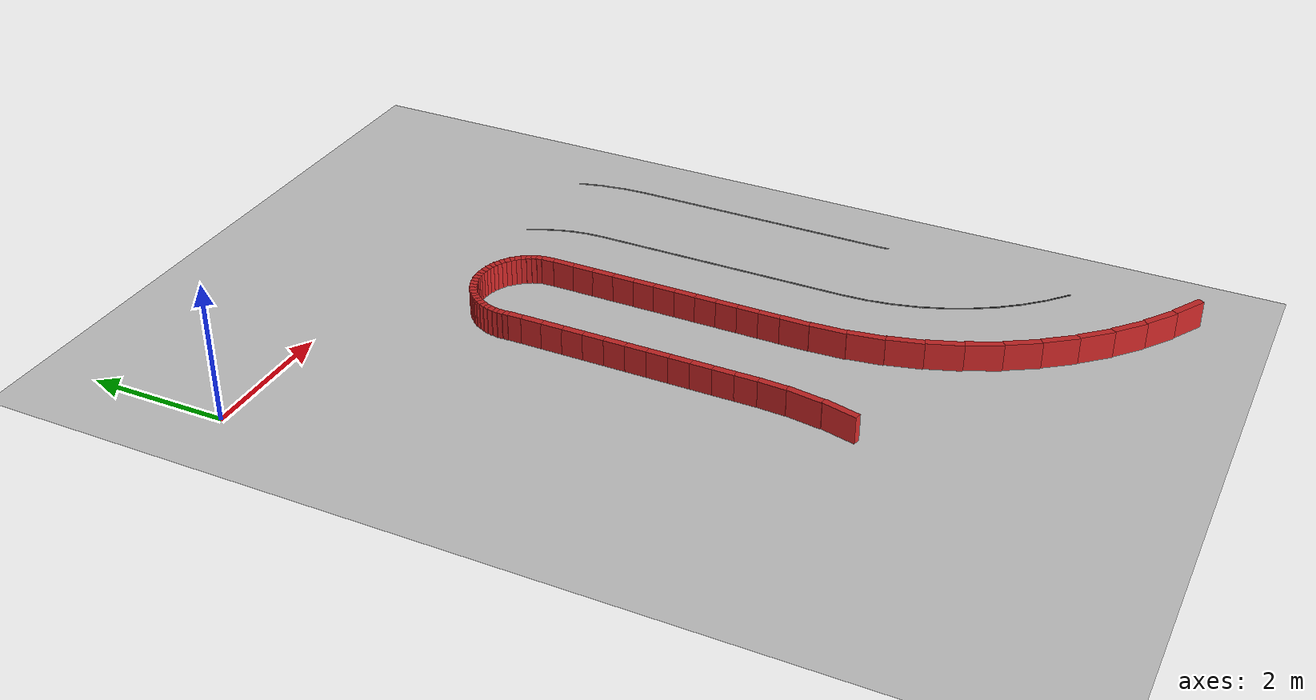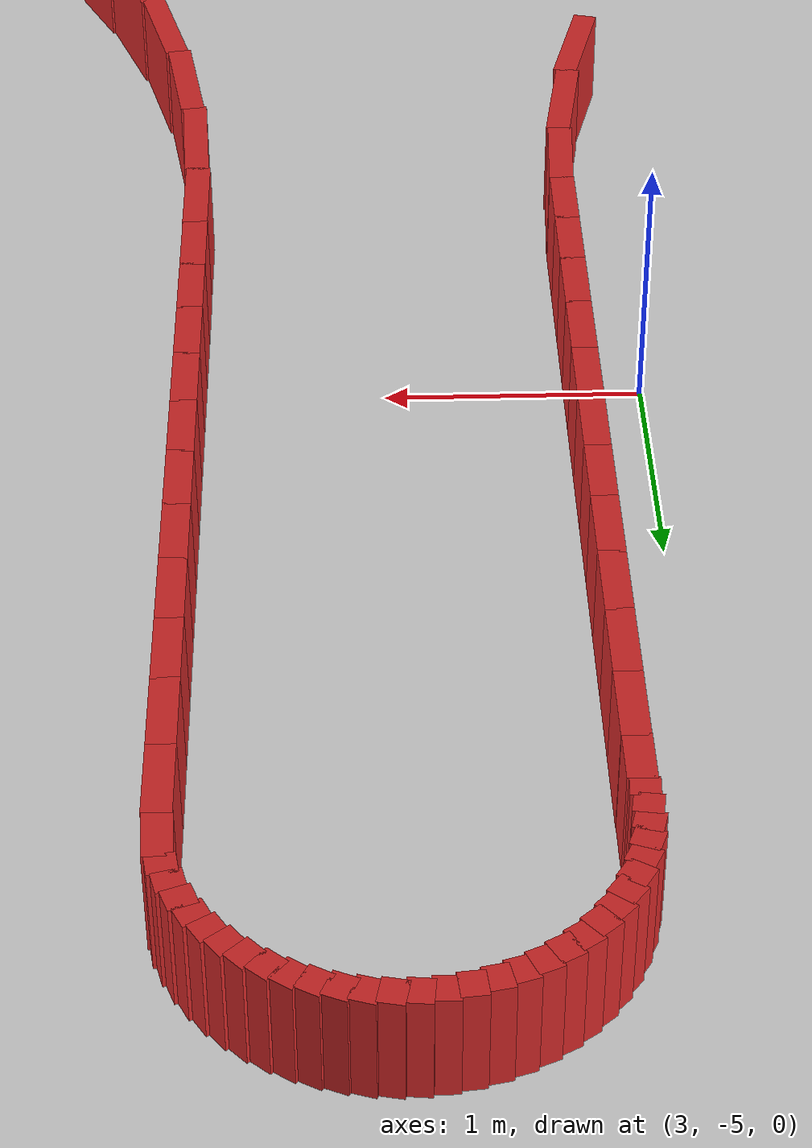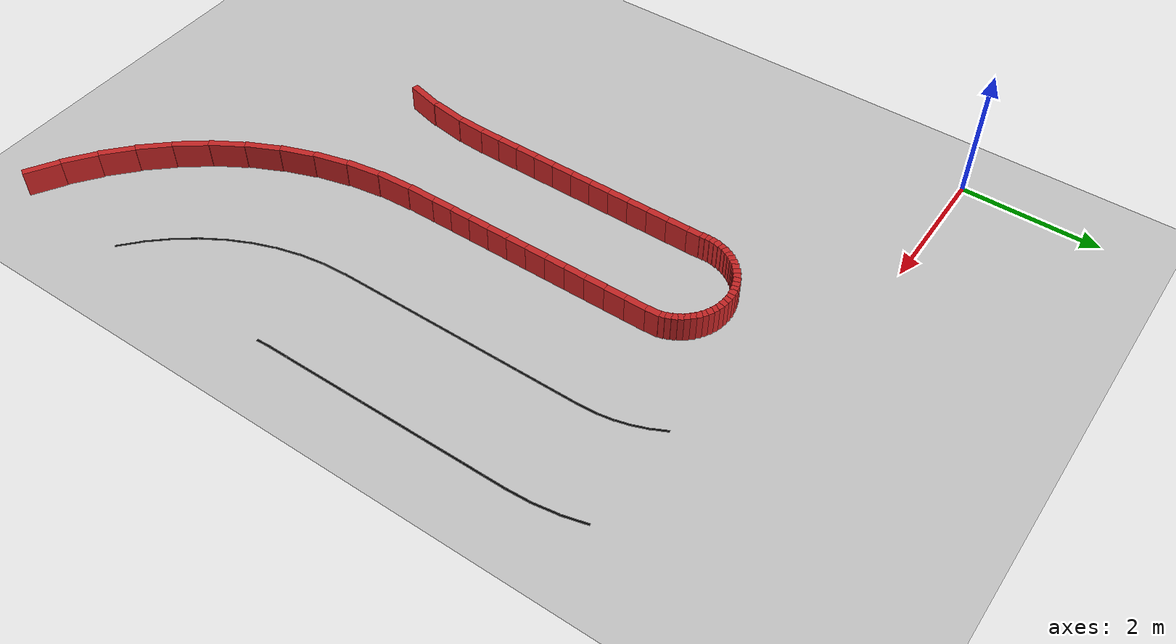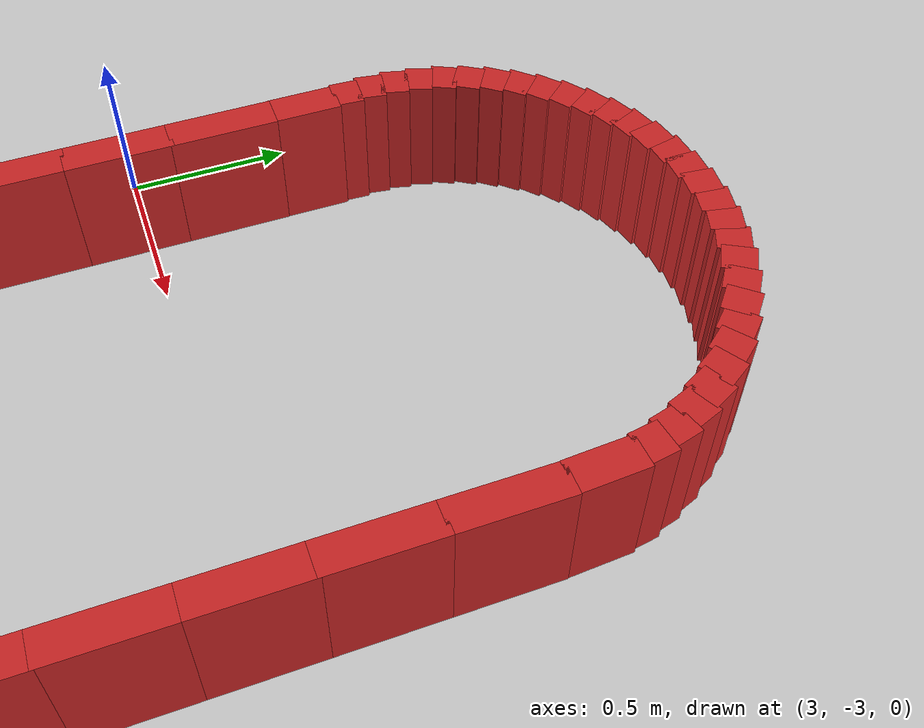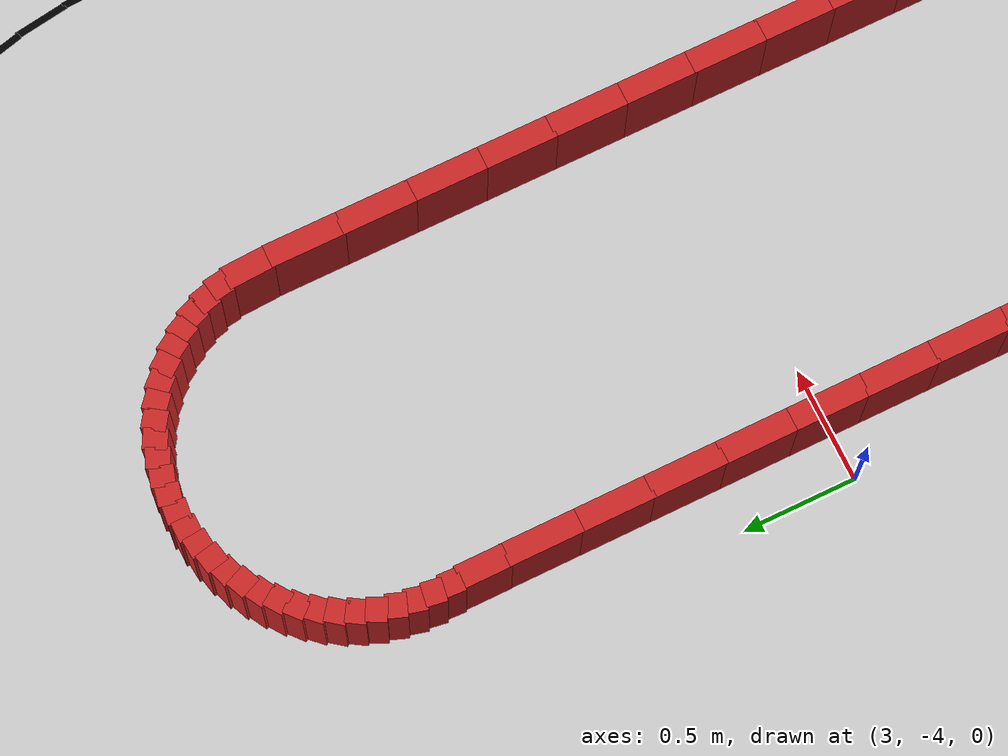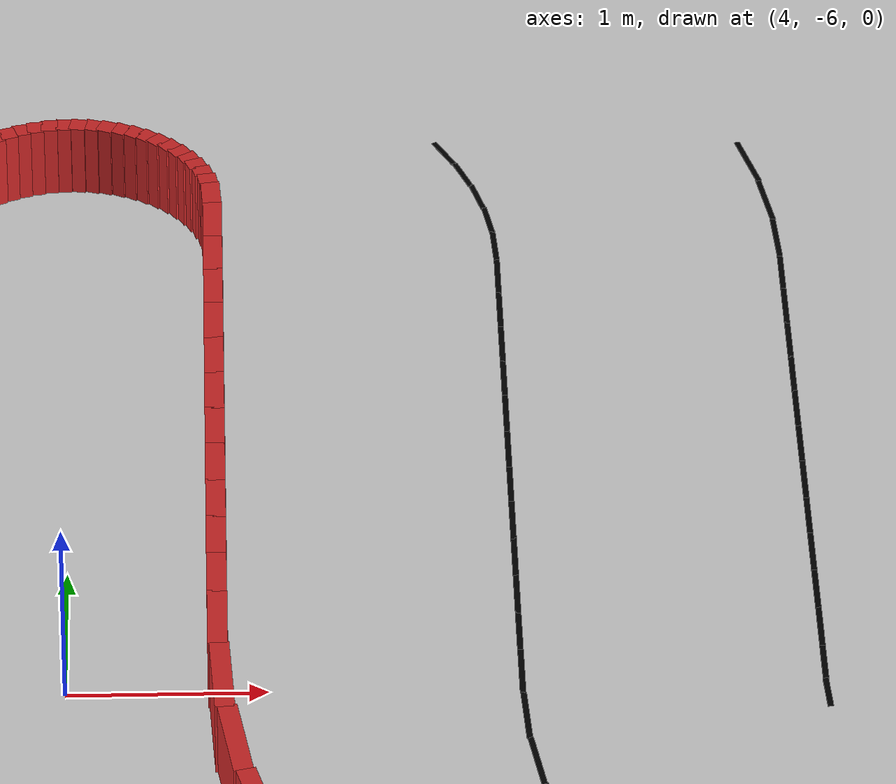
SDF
<sdf version="1.6">
 <world name="3lane_track">
  <include><uri>model://ground_plane</uri></include>
  <include><uri>model://sun</uri></include>
  <model name="ow_59">
   <static>true</static>
   <pose>3.1107 -7.1665 0.200 0 0 1.3254</pose>
   <link name="l">
    <collision name="c"><geometry><box><size>0.5251 0.1 0.4</size></box></geometry></collision>
    <visual name="v">
     <geometry><box><size>0.5251 0.1 0.4</size></box></geometry>
     <material><ambient>0.8 0.15 0.15 1</ambient><diffuse>0.8 0.15 0.15 1</diffuse></material>
    </visual>
   </link>
  </model>
  <model name="ow_60">
   <static>true</static>
   <pose>3.2004 -6.6599 0.200 0 0 1.4235</pose>
   <link name="l">
    <collision name="c"><geometry><box><size>0.5251 0.1 0.4</size></box></geometry></collision>
    <visual name="v">
     <geometry><box><size>0.5251 0.1 0.4</size></box></geometry>
     <material><ambient>0.8 0.15 0.15 1</ambient><diffuse>0.8 0.15 0.15 1</diffuse></material>
    </visual>
   </link>
  </model>
  <model name="ow_61">
   <static>true</static>
   <pose>3.2414 -6.2022 0.200 0 0 1.5217</pose>
   <link name="l">
    <collision name="c"><geometry><box><size>0.4148 0.1 0.4</size></box></geometry></collision>
    <visual name="v">
     <geometry><box><size>0.4148 0.1 0.4</size></box></geometry>
     <material><ambient>0.8 0.15 0.15 1</ambient><diffuse>0.8 0.15 0.15 1</diffuse></material>
    </visual>
   </link>
  </model>
  <model name="ow_62">
   <static>true</static>
   <pose>3.2500 -5.8437 0.200 0 0 1.5708</pose>
   <link name="l">
    <collision name="c"><geometry><box><size>0.3225 0.1 0.4</size></box></geometry></collision>
    <visual name="v">
     <geometry><box><size>0.3225 0.1 0.4</size></box></geometry>
     <material><ambient>0.8 0.15 0.15 1</ambient><diffuse>0.8 0.15 0.15 1</diffuse></material>
    </visual>
   </link>
  </model>
  <model name="ow_63">
   <static>true</static>
   <pose>3.2500 -5.5312 0.200 0 0 1.5708</pose>
   <link name="l">
    <collision name="c"><geometry><box><size>0.3225 0.1 0.4</size></box></geometry></collision>
    <visual name="v">
     <geometry><box><size>0.3225 0.1 0.4</size></box></geometry>
     <material><ambient>0.8 0.15 0.15 1</ambient><diffuse>0.8 0.15 0.15 1</diffuse></material>
    </visual>
   </link>
  </model>
  <model name="ow_64">
   <static>true</static>
   <pose>3.2500 -5.2187 0.200 0 0 1.5708</pose>
   <link name="l">
    <collision name="c"><geometry><box><size>0.3225 0.1 0.4</size></box></geometry></collision>
    <visual name="v">
     <geometry><box><size>0.3225 0.1 0.4</size></box></geometry>
     <material><ambient>0.8 0.15 0.15 1</ambient><diffuse>0.8 0.15 0.15 1</diffuse></material>
    </visual>
   </link>
  </model>
  <model name="ow_65">
   <static>true</static>
   <pose>3.2500 -4.9062 0.200 0 0 1.5708</pose>
   <link name="l">
    <collision name="c"><geometry><box><size>0.3225 0.1 0.4</size></box></geometry></collision>
    <visual name="v">
     <geometry><box><size>0.3225 0.1 0.4</size></box></geometry>
     <material><ambient>0.8 0.15 0.15 1</ambient><diffuse>0.8 0.15 0.15 1</diffuse></material>
    </visual>
   </link>
  </model>
  <model name="ow_66">
   <static>true</static>
   <pose>3.2500 -4.5937 0.200 0 0 1.5708</pose>
   <link name="l">
    <collision name="c"><geometry><box><size>0.3225 0.1 0.4</size></box></geometry></collision>
    <visual name="v">
     <geometry><box><size>0.3225 0.1 0.4</size></box></geometry>
     <material><ambient>0.8 0.15 0.15 1</ambient><diffuse>0.8 0.15 0.15 1</diffuse></material>
    </visual>
   </link>
  </model>
  <model name="ow_67">
   <static>true</static>
   <pose>3.2500 -4.2812 0.200 0 0 1.5708</pose>
   <link name="l">
    <collision name="c"><geometry><box><size>0.3225 0.1 0.4</size></box></geometry></collision>
    <visual name="v">
     <geometry><box><size>0.3225 0.1 0.4</size></box></geometry>
     <material><ambient>0.8 0.15 0.15 1</ambient><diffuse>0.8 0.15 0.15 1</diffuse></material>
    </visual>
   </link>
  </model>
  <model name="ow_68">
   <static>true</static>
   <pose>3.2500 -3.9687 0.200 0 0 1.5708</pose>
   <link name="l">
    <collision name="c"><geometry><box><size>0.3225 0.1 0.4</size></box></geometry></collision>
    <visual name="v">
     <geometry><box><size>0.3225 0.1 0.4</size></box></geometry>
     <material><ambient>0.8 0.15 0.15 1</ambient><diffuse>0.8 0.15 0.15 1</diffuse></material>
    </visual>
   </link>
  </model>
  <model name="ow_69">
   <static>true</static>
   <pose>3.2500 -3.6562 0.200 0 0 1.5708</pose>
   <link name="l">
    <collision name="c"><geometry><box><size>0.3225 0.1 0.4</size></box></geometry></collision>
    <visual name="v">
     <geometry><box><size>0.3225 0.1 0.4</size></box></geometry>
     <material><ambient>0.8 0.15 0.15 1</ambient><diffuse>0.8 0.15 0.15 1</diffuse></material>
    </visual>
   </link>
  </model>
  <model name="ow_70">
   <static>true</static>
   <pose>3.2500 -3.3437 0.200 0 0 1.5708</pose>
   <link name="l">
    <collision name="c"><geometry><box><size>0.3225 0.1 0.4</size></box></geometry></collision>
    <visual name="v">
     <geometry><box><size>0.3225 0.1 0.4</size></box></geometry>
     <material><ambient>0.8 0.15 0.15 1</ambient><diffuse>0.8 0.15 0.15 1</diffuse></material>
    </visual>
   </link>
  </model>
  <model name="ow_71">
   <static>true</static>
   <pose>3.2500 -3.0312 0.200 0 0 1.5708</pose>
   <link name="l">
    <collision name="c"><geometry><box><size>0.3225 0.1 0.4</size></box></geometry></collision>
    <visual name="v">
     <geometry><box><size>0.3225 0.1 0.4</size></box></geometry>
     <material><ambient>0.8 0.15 0.15 1</ambient><diffuse>0.8 0.15 0.15 1</diffuse></material>
    </visual>
   </link>
  </model>
  <model name="ow_72">
   <static>true</static>
   <pose>3.2500 -2.7187 0.200 0 0 1.5708</pose>
   <link name="l">
    <collision name="c"><geometry><box><size>0.3225 0.1 0.4</size></box></geometry></collision>
    <visual name="v">
     <geometry><box><size>0.3225 0.1 0.4</size></box></geometry>
     <material><ambient>0.8 0.15 0.15 1</ambient><diffuse>0.8 0.15 0.15 1</diffuse></material>
    </visual>
   </link>
  </model>
  <model name="ow_73">
   <static>true</static>
   <pose>3.2486 -2.4632 0.200 0 0 1.5708</pose>
   <link name="l">
    <collision name="c"><geometry><box><size>0.2086 0.1 0.4</size></box></geometry></collision>
    <visual name="v">
     <geometry><box><size>0.2086 0.1 0.4</size></box></geometry>
     <material><ambient>0.8 0.15 0.15 1</ambient><diffuse>0.8 0.15 0.15 1</diffuse></material>
    </visual>
   </link>
  </model>
  <model name="ow_74">
   <static>true</static>
   <pose>3.2433 -2.3256 0.200 0 0 1.5201</pose>
   <link name="l">
    <collision name="c"><geometry><box><size>0.0871 0.1 0.4</size></box></geometry></collision>
    <visual name="v">
     <geometry><box><size>0.0871 0.1 0.4</size></box></geometry>
     <material><ambient>0.8 0.15 0.15 1</ambient><diffuse>0.8 0.15 0.15 1</diffuse></material>
    </visual>
   </link>
  </model>
  <model name="ow_75">
   <static>true</static>
   <pose>3.2395 -2.2486 0.200 0 0 1.4188</pose>
   <link name="l">
    <collision name="c"><geometry><box><size>0.0871 0.1 0.4</size></box></geometry></collision>
    <visual name="v">
     <geometry><box><size>0.0871 0.1 0.4</size></box></geometry>
     <material><ambient>0.8 0.15 0.15 1</ambient><diffuse>0.8 0.15 0.15 1</diffuse></material>
    </visual>
   </link>
  </model>
  <model name="ow_76">
   <static>true</static>
   <pose>3.2436 -2.1717 0.200 0 0 1.3174</pose>
   <link name="l">
    <collision name="c"><geometry><box><size>0.0871 0.1 0.4</size></box></geometry></collision>
    <visual name="v">
     <geometry><box><size>0.0871 0.1 0.4</size></box></geometry>
     <material><ambient>0.8 0.15 0.15 1</ambient><diffuse>0.8 0.15 0.15 1</diffuse></material>
    </visual>
   </link>
  </model>
  <model name="ow_77">
   <static>true</static>
   <pose>3.2554 -2.0956 0.200 0 0 1.2161</pose>
   <link name="l">
    <collision name="c"><geometry><box><size>0.0871 0.1 0.4</size></box></geometry></collision>
    <visual name="v">
     <geometry><box><size>0.0871 0.1 0.4</size></box></geometry>
     <material><ambient>0.8 0.15 0.15 1</ambient><diffuse>0.8 0.15 0.15 1</diffuse></material>
    </visual>
   </link>
  </model>
  <model name="ow_78">
   <static>true</static>
   <pose>3.2748 -2.0210 0.200 0 0 1.1148</pose>
   <link name="l">
    <collision name="c"><geometry><box><size>0.0871 0.1 0.4</size></box></geometry></collision>
    <visual name="v">
     <geometry><box><size>0.0871 0.1 0.4</size></box></geometry>
     <material><ambient>0.8 0.15 0.15 1</ambient><diffuse>0.8 0.15 0.15 1</diffuse></material>
    </visual>
   </link>
  </model>
  <model name="ow_79">
   <static>true</static>
   <pose>3.3017 -1.9488 0.200 0 0 1.0134</pose>
   <link name="l">
    <collision name="c"><geometry><box><size>0.0871 0.1 0.4</size></box></geometry></collision>
    <visual name="v">
     <geometry><box><size>0.0871 0.1 0.4</size></box></geometry>
     <material><ambient>0.8 0.15 0.15 1</ambient><diffuse>0.8 0.15 0.15 1</diffuse></material>
    </visual>
   </link>
  </model>
  <model name="ow_80">
   <static>true</static>
   <pose>3.3357 -1.8797 0.200 0 0 0.9121</pose>
   <link name="l">
    <collision name="c"><geometry><box><size>0.0871 0.1 0.4</size></box></geometry></collision>
    <visual name="v">
     <geometry><box><size>0.0871 0.1 0.4</size></box></geometry>
     <material><ambient>0.8 0.15 0.15 1</ambient><diffuse>0.8 0.15 0.15 1</diffuse></material>
    </visual>
   </link>
  </model>
  <model name="ow_81">
   <static>true</static>
   <pose>3.3766 -1.8144 0.200 0 0 0.8107</pose>
   <link name="l">
    <collision name="c"><geometry><box><size>0.0871 0.1 0.4</size></box></geometry></collision>
    <visual name="v">
     <geometry><box><size>0.0871 0.1 0.4</size></box></geometry>
     <material><ambient>0.8 0.15 0.15 1</ambient><diffuse>0.8 0.15 0.15 1</diffuse></material>
    </visual>
   </link>
  </model>
  <model name="ow_82">
   <static>true</static>
   <pose>3.4239 -1.7536 0.200 0 0 0.7094</pose>
   <link name="l">
    <collision name="c"><geometry><box><size>0.0871 0.1 0.4</size></box></geometry></collision>
    <visual name="v">
     <geometry><box><size>0.0871 0.1 0.4</size></box></geometry>
     <material><ambient>0.8 0.15 0.15 1</ambient><diffuse>0.8 0.15 0.15 1</diffuse></material>
    </visual>
   </link>
  </model>
  <model name="ow_83">
   <static>true</static>
   <pose>3.4770 -1.6979 0.200 0 0 0.6081</pose>
   <link name="l">
    <collision name="c"><geometry><box><size>0.0871 0.1 0.4</size></box></geometry></collision>
    <visual name="v">
     <geometry><box><size>0.0871 0.1 0.4</size></box></geometry>
     <material><ambient>0.8 0.15 0.15 1</ambient><diffuse>0.8 0.15 0.15 1</diffuse></material>
    </visual>
   </link>
  </model>
  <model name="ow_84">
   <static>true</static>
   <pose>3.5356 -1.6478 0.200 0 0 0.5067</pose>
   <link name="l">
    <collision name="c"><geometry><box><size>0.0871 0.1 0.4</size></box></geometry></collision>
    <visual name="v">
     <geometry><box><size>0.0871 0.1 0.4</size></box></geometry>
     <material><ambient>0.8 0.15 0.15 1</ambient><diffuse>0.8 0.15 0.15 1</diffuse></material>
    </visual>
   </link>
  </model>
  <model name="ow_85">
   <static>true</static>
   <pose>3.5989 -1.6039 0.200 0 0 0.4054</pose>
   <link name="l">
    <collision name="c"><geometry><box><size>0.0871 0.1 0.4</size></box></geometry></collision>
    <visual name="v">
     <geometry><box><size>0.0871 0.1 0.4</size></box></geometry>
     <material><ambient>0.8 0.15 0.15 1</ambient><diffuse>0.8 0.15 0.15 1</diffuse></material>
    </visual>
   </link>
  </model>
  <model name="ow_86">
   <static>true</static>
   <pose>3.6663 -1.5666 0.200 0 0 0.3040</pose>
   <link name="l">
    <collision name="c"><geometry><box><size>0.0871 0.1 0.4</size></box></geometry></collision>
    <visual name="v">
     <geometry><box><size>0.0871 0.1 0.4</size></box></geometry>
     <material><ambient>0.8 0.15 0.15 1</ambient><diffuse>0.8 0.15 0.15 1</diffuse></material>
    </visual>
   </link>
  </model>
  <model name="ow_87">
   <static>true</static>
   <pose>3.7372 -1.5364 0.200 0 0 0.2027</pose>
   <link name="l">
    <collision name="c"><geometry><box><size>0.0871 0.1 0.4</size></box></geometry></collision>
    <visual name="v">
     <geometry><box><size>0.0871 0.1 0.4</size></box></geometry>
     <material><ambient>0.8 0.15 0.15 1</ambient><diffuse>0.8 0.15 0.15 1</diffuse></material>
    </visual>
   </link>
  </model>
  <model name="ow_88">
   <static>true</static>
   <pose>3.8107 -1.5135 0.200 0 0 0.1013</pose>
   <link name="l">
    <collision name="c"><geometry><box><size>0.0871 0.1 0.4</size></box></geometry></collision>
    <visual name="v">
     <geometry><box><size>0.0871 0.1 0.4</size></box></geometry>
     <material><ambient>0.8 0.15 0.15 1</ambient><diffuse>0.8 0.15 0.15 1</diffuse></material>
    </visual>
   </link>
  </model>
  <model name="ow_89">
   <static>true</static>
   <pose>3.8862 -1.4981 0.200 0 0 0.0000</pose>
   <link name="l">
    <collision name="c"><geometry><box><size>0.0871 0.1 0.4</size></box></geometry></collision>
    <visual name="v">
     <geometry><box><size>0.0871 0.1 0.4</size></box></geometry>
     <material><ambient>0.8 0.15 0.15 1</ambient><diffuse>0.8 0.15 0.15 1</diffuse></material>
    </visual>
   </link>
  </model>
  <model name="ow_90">
   <static>true</static>
   <pose>3.9628 -1.4904 0.200 0 0 -0.1013</pose>
   <link name="l">
    <collision name="c"><geometry><box><size>0.0871 0.1 0.4</size></box></geometry></collision>
    <visual name="v">
     <geometry><box><size>0.0871 0.1 0.4</size></box></geometry>
     <material><ambient>0.8 0.15 0.15 1</ambient><diffuse>0.8 0.15 0.15 1</diffuse></material>
    </visual>
   </link>
  </model>
  <model name="ow_91">
   <static>true</static>
   <pose>4.0399 -1.4906 0.200 0 0 -0.2027</pose>
   <link name="l">
    <collision name="c"><geometry><box><size>0.0871 0.1 0.4</size></box></geometry></collision>
    <visual name="v">
     <geometry><box><size>0.0871 0.1 0.4</size></box></geometry>
     <material><ambient>0.8 0.15 0.15 1</ambient><diffuse>0.8 0.15 0.15 1</diffuse></material>
    </visual>
   </link>
  </model>
  <model name="ow_92">
   <static>true</static>
   <pose>4.1165 -1.4985 0.200 0 0 -0.3040</pose>
   <link name="l">
    <collision name="c"><geometry><box><size>0.0871 0.1 0.4</size></box></geometry></collision>
    <visual name="v">
     <geometry><box><size>0.0871 0.1 0.4</size></box></geometry>
     <material><ambient>0.8 0.15 0.15 1</ambient><diffuse>0.8 0.15 0.15 1</diffuse></material>
    </visual>
   </link>
  </model>
  <model name="ow_93">
   <static>true</static>
   <pose>4.1919 -1.5141 0.200 0 0 -0.4054</pose>
   <link name="l">
    <collision name="c"><geometry><box><size>0.0871 0.1 0.4</size></box></geometry></collision>
    <visual name="v">
     <geometry><box><size>0.0871 0.1 0.4</size></box></geometry>
     <material><ambient>0.8 0.15 0.15 1</ambient><diffuse>0.8 0.15 0.15 1</diffuse></material>
    </visual>
   </link>
  </model>
  <model name="ow_94">
   <static>true</static>
   <pose>4.2654 -1.5373 0.200 0 0 -0.5067</pose>
   <link name="l">
    <collision name="c"><geometry><box><size>0.0871 0.1 0.4</size></box></geometry></collision>
    <visual name="v">
     <geometry><box><size>0.0871 0.1 0.4</size></box></geometry>
     <material><ambient>0.8 0.15 0.15 1</ambient><diffuse>0.8 0.15 0.15 1</diffuse></material>
    </visual>
   </link>
  </model>
  <model name="ow_95">
   <static>true</static>
   <pose>4.3361 -1.5678 0.200 0 0 -0.6081</pose>
   <link name="l">
    <collision name="c"><geometry><box><size>0.0871 0.1 0.4</size></box></geometry></collision>
    <visual name="v">
     <geometry><box><size>0.0871 0.1 0.4</size></box></geometry>
     <material><ambient>0.8 0.15 0.15 1</ambient><diffuse>0.8 0.15 0.15 1</diffuse></material>
    </visual>
   </link>
  </model>
  <model name="ow_96">
   <static>true</static>
   <pose>4.4034 -1.6053 0.200 0 0 -0.7094</pose>
   <link name="l">
    <collision name="c"><geometry><box><size>0.0871 0.1 0.4</size></box></geometry></collision>
    <visual name="v">
     <geometry><box><size>0.0871 0.1 0.4</size></box></geometry>
     <material><ambient>0.8 0.15 0.15 1</ambient><diffuse>0.8 0.15 0.15 1</diffuse></material>
    </visual>
   </link>
  </model>
  <model name="ow_97">
   <static>true</static>
   <pose>4.4666 -1.6495 0.200 0 0 -0.8107</pose>
   <link name="l">
    <collision name="c"><geometry><box><size>0.0871 0.1 0.4</size></box></geometry></collision>
    <visual name="v">
     <geometry><box><size>0.0871 0.1 0.4</size></box></geometry>
     <material><ambient>0.8 0.15 0.15 1</ambient><diffuse>0.8 0.15 0.15 1</diffuse></material>
    </visual>
   </link>
  </model>
  <model name="ow_98">
   <static>true</static>
   <pose>4.5249 -1.6997 0.200 0 0 -0.9121</pose>
   <link name="l">
    <collision name="c"><geometry><box><size>0.0871 0.1 0.4</size></box></geometry></collision>
    <visual name="v">
     <geometry><box><size>0.0871 0.1 0.4</size></box></geometry>
     <material><ambient>0.8 0.15 0.15 1</ambient><diffuse>0.8 0.15 0.15 1</diffuse></material>
    </visual>
   </link>
  </model>
  <model name="ow_99">
   <static>true</static>
   <pose>4.5779 -1.7557 0.200 0 0 -1.0134</pose>
   <link name="l">
    <collision name="c"><geometry><box><size>0.0871 0.1 0.4</size></box></geometry></collision>
    <visual name="v">
     <geometry><box><size>0.0871 0.1 0.4</size></box></geometry>
     <material><ambient>0.8 0.15 0.15 1</ambient><diffuse>0.8 0.15 0.15 1</diffuse></material>
    </visual>
   </link>
  </model>
  <model name="ow_100">
   <static>true</static>
   <pose>4.6250 -1.8167 0.200 0 0 -1.1148</pose>
   <link name="l">
    <collision name="c"><geometry><box><size>0.0871 0.1 0.4</size></box></geometry></collision>
    <visual name="v">
     <geometry><box><size>0.0871 0.1 0.4</size></box></geometry>
     <material><ambient>0.8 0.15 0.15 1</ambient><diffuse>0.8 0.15 0.15 1</diffuse></material>
    </visual>
   </link>
  </model>
  <model name="ow_101">
   <static>true</static>
   <pose>4.6656 -1.8821 0.200 0 0 -1.2161</pose>
   <link name="l">
    <collision name="c"><geometry><box><size>0.0871 0.1 0.4</size></box></geometry></collision>
    <visual name="v">
     <geometry><box><size>0.0871 0.1 0.4</size></box></geometry>
     <material><ambient>0.8 0.15 0.15 1</ambient><diffuse>0.8 0.15 0.15 1</diffuse></material>
    </visual>
   </link>
  </model>
  <model name="ow_102">
   <static>true</static>
   <pose>4.6994 -1.9513 0.200 0 0 -1.3174</pose>
   <link name="l">
    <collision name="c"><geometry><box><size>0.0871 0.1 0.4</size></box></geometry></collision>
    <visual name="v">
     <geometry><box><size>0.0871 0.1 0.4</size></box></geometry>
     <material><ambient>0.8 0.15 0.15 1</ambient><diffuse>0.8 0.15 0.15 1</diffuse></material>
    </visual>
   </link>
  </model>
  <model name="ow_103">
   <static>true</static>
   <pose>4.7260 -2.0236 0.200 0 0 -1.4188</pose>
   <link name="l">
    <collision name="c"><geometry><box><size>0.0871 0.1 0.4</size></box></geometry></collision>
    <visual name="v">
     <geometry><box><size>0.0871 0.1 0.4</size></box></geometry>
     <material><ambient>0.8 0.15 0.15 1</ambient><diffuse>0.8 0.15 0.15 1</diffuse></material>
    </visual>
   </link>
  </model>
  <model name="ow_104">
   <static>true</static>
   <pose>4.7437 -2.1552 0.200 0 0 -1.5201</pose>
   <link name="l">
    <collision name="c"><geometry><box><size>0.2000 0.1 0.4</size></box></geometry></collision>
    <visual name="v">
     <geometry><box><size>0.2000 0.1 0.4</size></box></geometry>
     <material><ambient>0.8 0.15 0.15 1</ambient><diffuse>0.8 0.15 0.15 1</diffuse></material>
    </visual>
   </link>
  </model>
  <model name="ow_105">
   <static>true</static>
   <pose>4.7500 -2.4062 0.200 0 0 -1.5708</pose>
   <link name="l">
    <collision name="c"><geometry><box><size>0.3225 0.1 0.4</size></box></geometry></collision>
    <visual name="v">
     <geometry><box><size>0.3225 0.1 0.4</size></box></geometry>
     <material><ambient>0.8 0.15 0.15 1</ambient><diffuse>0.8 0.15 0.15 1</diffuse></material>
    </visual>
   </link>
  </model>
  <model name="ow_106">
   <static>true</static>
   <pose>4.7500 -2.7188 0.200 0 0 -1.5708</pose>
   <link name="l">
    <collision name="c"><geometry><box><size>0.3225 0.1 0.4</size></box></geometry></collision>
    <visual name="v">
     <geometry><box><size>0.3225 0.1 0.4</size></box></geometry>
     <material><ambient>0.8 0.15 0.15 1</ambient><diffuse>0.8 0.15 0.15 1</diffuse></material>
    </visual>
   </link>
  </model>
  <model name="ow_107">
   <static>true</static>
   <pose>4.7500 -3.0312 0.200 0 0 -1.5708</pose>
   <link name="l">
    <collision name="c"><geometry><box><size>0.3225 0.1 0.4</size></box></geometry></collision>
    <visual name="v">
     <geometry><box><size>0.3225 0.1 0.4</size></box></geometry>
     <material><ambient>0.8 0.15 0.15 1</ambient><diffuse>0.8 0.15 0.15 1</diffuse></material>
    </visual>
   </link>
  </model>
  <model name="ow_108">
   <static>true</static>
   <pose>4.7500 -3.3438 0.200 0 0 -1.5708</pose>
   <link name="l">
    <collision name="c"><geometry><box><size>0.3225 0.1 0.4</size></box></geometry></collision>
    <visual name="v">
     <geometry><box><size>0.3225 0.1 0.4</size></box></geometry>
     <material><ambient>0.8 0.15 0.15 1</ambient><diffuse>0.8 0.15 0.15 1</diffuse></material>
    </visual>
   </link>
  </model>
  <model name="ow_109">
   <static>true</static>
   <pose>4.7500 -3.6562 0.200 0 0 -1.5708</pose>
   <link name="l">
    <collision name="c"><geometry><box><size>0.3225 0.1 0.4</size></box></geometry></collision>
    <visual name="v">
     <geometry><box><size>0.3225 0.1 0.4</size></box></geometry>
     <material><ambient>0.8 0.15 0.15 1</ambient><diffuse>0.8 0.15 0.15 1</diffuse></material>
    </visual>
   </link>
  </model>
  <model name="ow_110">
   <static>true</static>
   <pose>4.7500 -3.9688 0.200 0 0 -1.5708</pose>
   <link name="l">
    <collision name="c"><geometry><box><size>0.3225 0.1 0.4</size></box></geometry></collision>
    <visual name="v">
     <geometry><box><size>0.3225 0.1 0.4</size></box></geometry>
     <material><ambient>0.8 0.15 0.15 1</ambient><diffuse>0.8 0.15 0.15 1</diffuse></material>
    </visual>
   </link>
  </model>
  <model name="ow_111">
   <static>true</static>
   <pose>4.7500 -4.2812 0.200 0 0 -1.5708</pose>
   <link name="l">
    <collision name="c"><geometry><box><size>0.3225 0.1 0.4</size></box></geometry></collision>
    <visual name="v">
     <geometry><box><size>0.3225 0.1 0.4</size></box></geometry>
     <material><ambient>0.8 0.15 0.15 1</ambient><diffuse>0.8 0.15 0.15 1</diffuse></material>
    </visual>
   </link>
  </model>
  <model name="ow_112">
   <static>true</static>
   <pose>4.7500 -4.5938 0.200 0 0 -1.5708</pose>
   <link name="l">
    <collision name="c"><geometry><box><size>0.3225 0.1 0.4</size></box></geometry></collision>
    <visual name="v">
     <geometry><box><size>0.3225 0.1 0.4</size></box></geometry>
     <material><ambient>0.8 0.15 0.15 1</ambient><diffuse>0.8 0.15 0.15 1</diffuse></material>
    </visual>
   </link>
  </model>
  <model name="ow_113">
   <static>true</static>
   <pose>4.7500 -4.9062 0.200 0 0 -1.5708</pose>
   <link name="l">
    <collision name="c"><geometry><box><size>0.3225 0.1 0.4</size></box></geometry></collision>
    <visual name="v">
     <geometry><box><size>0.3225 0.1 0.4</size></box></geometry>
     <material><ambient>0.8 0.15 0.15 1</ambient><diffuse>0.8 0.15 0.15 1</diffuse></material>
    </visual>
   </link>
  </model>
  <model name="ow_114">
   <static>true</static>
   <pose>4.7500 -5.2188 0.200 0 0 -1.5708</pose>
   <link name="l">
    <collision name="c"><geometry><box><size>0.3225 0.1 0.4</size></box></geometry></collision>
    <visual name="v">
     <geometry><box><size>0.3225 0.1 0.4</size></box></geometry>
     <material><ambient>0.8 0.15 0.15 1</ambient><diffuse>0.8 0.15 0.15 1</diffuse></material>
    </visual>
   </link>
  </model>
  <model name="ow_115">
   <static>true</static>
   <pose>4.7500 -5.5312 0.200 0 0 -1.5708</pose>
   <link name="l">
    <collision name="c"><geometry><box><size>0.3225 0.1 0.4</size></box></geometry></collision>
    <visual name="v">
     <geometry><box><size>0.3225 0.1 0.4</size></box></geometry>
     <material><ambient>0.8 0.15 0.15 1</ambient><diffuse>0.8 0.15 0.15 1</diffuse></material>
    </visual>
   </link>
  </model>
  <model name="ow_116">
   <static>true</static>
   <pose>4.7514 -5.8990 0.200 0 0 -1.5708</pose>
   <link name="l">
    <collision name="c"><geometry><box><size>0.4329 0.1 0.4</size></box></geometry></collision>
    <visual name="v">
     <geometry><box><size>0.4329 0.1 0.4</size></box></geometry>
     <material><ambient>0.8 0.15 0.15 1</ambient><diffuse>0.8 0.15 0.15 1</diffuse></material>
    </visual>
   </link>
  </model>
  <model name="ow_117">
   <static>true</static>
   <pose>4.7708 -6.3673 0.200 0 0 -1.5217</pose>
   <link name="l">
    <collision name="c"><geometry><box><size>0.5251 0.1 0.4</size></box></geometry></collision>
    <visual name="v">
     <geometry><box><size>0.5251 0.1 0.4</size></box></geometry>
     <material><ambient>0.8 0.15 0.15 1</ambient><diffuse>0.8 0.15 0.15 1</diffuse></material>
    </visual>
   </link>
  </model>
  <model name="ow_118">
   <static>true</static>
   <pose>4.8319 -6.8781 0.200 0 0 -1.4235</pose>
   <link name="l">
    <collision name="c"><geometry><box><size>0.5251 0.1 0.4</size></box></geometry></collision>
    <visual name="v">
     <geometry><box><size>0.5251 0.1 0.4</size></box></geometry>
     <material><ambient>0.8 0.15 0.15 1</ambient><diffuse>0.8 0.15 0.15 1</diffuse></material>
    </visual>
   </link>
  </model>
  <model name="ow_119">
   <static>true</static>
   <pose>4.9429 -7.3804 0.200 0 0 -1.3254</pose>
   <link name="l">
    <collision name="c"><geometry><box><size>0.5251 0.1 0.4</size></box></geometry></collision>
    <visual name="v">
     <geometry><box><size>0.5251 0.1 0.4</size></box></geometry>
     <material><ambient>0.8 0.15 0.15 1</ambient><diffuse>0.8 0.15 0.15 1</diffuse></material>
    </visual>
   </link>
  </model>
  <model name="ow_120">
   <static>true</static>
   <pose>5.1025 -7.8695 0.200 0 0 -1.2272</pose>
   <link name="l">
    <collision name="c"><geometry><box><size>0.5251 0.1 0.4</size></box></geometry></collision>
    <visual name="v">
     <geometry><box><size>0.5251 0.1 0.4</size></box></geometry>
     <material><ambient>0.8 0.15 0.15 1</ambient><diffuse>0.8 0.15 0.15 1</diffuse></material>
    </visual>
   </link>
  </model>
  <model name="ow_121">
   <static>true</static>
   <pose>5.3094 -8.3405 0.200 0 0 -1.1290</pose>
   <link name="l">
    <collision name="c"><geometry><box><size>0.5251 0.1 0.4</size></box></geometry></collision>
    <visual name="v">
     <geometry><box><size>0.5251 0.1 0.4</size></box></geometry>
     <material><ambient>0.8 0.15 0.15 1</ambient><diffuse>0.8 0.15 0.15 1</diffuse></material>
    </visual>
   </link>
  </model>
  <model name="ow_122">
   <static>true</static>
   <pose>5.5614 -8.7890 0.200 0 0 -1.0308</pose>
   <link name="l">
    <collision name="c"><geometry><box><size>0.5251 0.1 0.4</size></box></geometry></collision>
    <visual name="v">
     <geometry><box><size>0.5251 0.1 0.4</size></box></geometry>
     <material><ambient>0.8 0.15 0.15 1</ambient><diffuse>0.8 0.15 0.15 1</diffuse></material>
    </visual>
   </link>
  </model>
  <model name="ow_123">
   <static>true</static>
   <pose>5.8561 -9.2106 0.200 0 0 -0.9327</pose>
   <link name="l">
    <collision name="c"><geometry><box><size>0.5251 0.1 0.4</size></box></geometry></collision>
    <visual name="v">
     <geometry><box><size>0.5251 0.1 0.4</size></box></geometry>
     <material><ambient>0.8 0.15 0.15 1</ambient><diffuse>0.8 0.15 0.15 1</diffuse></material>
    </visual>
   </link>
  </model>
  <model name="ow_124">
   <static>true</static>
   <pose>6.1908 -9.6013 0.200 0 0 -0.8345</pose>
   <link name="l">
    <collision name="c"><geometry><box><size>0.5251 0.1 0.4</size></box></geometry></collision>
    <visual name="v">
     <geometry><box><size>0.5251 0.1 0.4</size></box></geometry>
     <material><ambient>0.8 0.15 0.15 1</ambient><diffuse>0.8 0.15 0.15 1</diffuse></material>
    </visual>
   </link>
  </model>
  <model name="ow_125">
   <static>true</static>
   <pose>6.5621 -9.9574 0.200 0 0 -0.7363</pose>
   <link name="l">
    <collision name="c"><geometry><box><size>0.5251 0.1 0.4</size></box></geometry></collision>
    <visual name="v">
     <geometry><box><size>0.5251 0.1 0.4</size></box></geometry>
     <material><ambient>0.8 0.15 0.15 1</ambient><diffuse>0.8 0.15 0.15 1</diffuse></material>
    </visual>
   </link>
  </model>
  <model name="ow_126">
   <static>true</static>
   <pose>6.9665 -10.2753 0.200 0 0 -0.6381</pose>
   <link name="l">
    <collision name="c"><geometry><box><size>0.5251 0.1 0.4</size></box></geometry></collision>
    <visual name="v">
     <geometry><box><size>0.5251 0.1 0.4</size></box></geometry>
     <material><ambient>0.8 0.15 0.15 1</ambient><diffuse>0.8 0.15 0.15 1</diffuse></material>
    </visual>
   </link>
  </model>
  <model name="ow_127">
   <static>true</static>
   <pose>7.4002 -10.5520 0.200 0 0 -0.5400</pose>
   <link name="l">
    <collision name="c"><geometry><box><size>0.5251 0.1 0.4</size></box></geometry></collision>
    <visual name="v">
     <geometry><box><size>0.5251 0.1 0.4</size></box></geometry>
     <material><ambient>0.8 0.15 0.15 1</ambient><diffuse>0.8 0.15 0.15 1</diffuse></material>
    </visual>
   </link>
  </model>
  <model name="line_201">
   <static>true</static>
   <pose>6.0016 -1.2259 0.002 0 0 -1.1148</pose>
   <link name="l">
    <visual name="v">
     <geometry><box><size>0.2381 0.03 0.002</size></box></geometry>
     <material><ambient>0 0 0 1</ambient><diffuse>0 0 0 1</diffuse></material>
    </visual>
   </link>
  </model>
  <model name="line_203">
   <static>true</static>
   <pose>6.0950 -1.4337 0.002 0 0 -1.2161</pose>
   <link name="l">
    <visual name="v">
     <geometry><box><size>0.2381 0.03 0.002</size></box></geometry>
     <material><ambient>0 0 0 1</ambient><diffuse>0 0 0 1</diffuse></material>
    </visual>
   </link>
  </model>
  <model name="line_204">
   <static>true</static>
   <pose>7.6342 -1.3482 0.002 0 0 -1.3174</pose>
   <link name="l">
    <visual name="v">
     <geometry><box><size>0.3898 0.03 0.002</size></box></geometry>
     <material><ambient>0 0 0 1</ambient><diffuse>0 0 0 1</diffuse></material>
    </visual>
   </link>
  </model>
  <model name="line_205">
   <static>true</static>
   <pose>6.1668 -1.6498 0.002 0 0 -1.3174</pose>
   <link name="l">
    <visual name="v">
     <geometry><box><size>0.2381 0.03 0.002</size></box></geometry>
     <material><ambient>0 0 0 1</ambient><diffuse>0 0 0 1</diffuse></material>
    </visual>
   </link>
  </model>
  <model name="line_206">
   <static>true</static>
   <pose>7.7068 -1.7205 0.002 0 0 -1.4188</pose>
   <link name="l">
    <visual name="v">
     <geometry><box><size>0.3898 0.03 0.002</size></box></geometry>
     <material><ambient>0 0 0 1</ambient><diffuse>0 0 0 1</diffuse></material>
    </visual>
   </link>
  </model>
  <model name="line_207">
   <static>true</static>
   <pose>6.2164 -1.8721 0.002 0 0 -1.4188</pose>
   <link name="l">
    <visual name="v">
     <geometry><box><size>0.2381 0.03 0.002</size></box></geometry>
     <material><ambient>0 0 0 1</ambient><diffuse>0 0 0 1</diffuse></material>
    </visual>
   </link>
  </model>
  <model name="line_208">
   <static>true</static>
   <pose>7.7418 -2.0793 0.002 0 0 -1.5201</pose>
   <link name="l">
    <visual name="v">
     <geometry><box><size>0.3519 0.03 0.002</size></box></geometry>
     <material><ambient>0 0 0 1</ambient><diffuse>0 0 0 1</diffuse></material>
    </visual>
   </link>
  </model>
  <model name="line_209">
   <static>true</static>
   <pose>6.2428 -2.1172 0.002 0 0 -1.5201</pose>
   <link name="l">
    <visual name="v">
     <geometry><box><size>0.2759 0.03 0.002</size></box></geometry>
     <material><ambient>0 0 0 1</ambient><diffuse>0 0 0 1</diffuse></material>
    </visual>
   </link>
  </model>
  <model name="line_210">
   <static>true</static>
   <pose>7.7500 -2.4062 0.002 0 0 -1.5708</pose>
   <link name="l">
    <visual name="v">
     <geometry><box><size>0.3225 0.03 0.002</size></box></geometry>
     <material><ambient>0 0 0 1</ambient><diffuse>0 0 0 1</diffuse></material>
    </visual>
   </link>
  </model>
  <model name="line_211">
   <static>true</static>
   <pose>6.2500 -2.4062 0.002 0 0 -1.5708</pose>
   <link name="l">
    <visual name="v">
     <geometry><box><size>0.3225 0.03 0.002</size></box></geometry>
     <material><ambient>0 0 0 1</ambient><diffuse>0 0 0 1</diffuse></material>
    </visual>
   </link>
  </model>
  <model name="line_212">
   <static>true</static>
   <pose>7.7500 -2.7187 0.002 0 0 -1.5708</pose>
   <link name="l">
    <visual name="v">
     <geometry><box><size>0.3225 0.03 0.002</size></box></geometry>
     <material><ambient>0 0 0 1</ambient><diffuse>0 0 0 1</diffuse></material>
    </visual>
   </link>
  </model>
  <model name="line_213">
   <static>true</static>
   <pose>6.2500 -2.7187 0.002 0 0 -1.5708</pose>
   <link name="l">
    <visual name="v">
     <geometry><box><size>0.3225 0.03 0.002</size></box></geometry>
     <material><ambient>0 0 0 1</ambient><diffuse>0 0 0 1</diffuse></material>
    </visual>
   </link>
  </model>
  <model name="line_214">
   <static>true</static>
   <pose>7.7500 -3.0312 0.002 0 0 -1.5708</pose>
   <link name="l">
    <visual name="v">
     <geometry><box><size>0.3225 0.03 0.002</size></box></geometry>
     <material><ambient>0 0 0 1</ambient><diffuse>0 0 0 1</diffuse></material>
    </visual>
   </link>
  </model>
  <model name="line_215">
   <static>true</static>
   <pose>6.2500 -3.0312 0.002 0 0 -1.5708</pose>
   <link name="l">
    <visual name="v">
     <geometry><box><size>0.3225 0.03 0.002</size></box></geometry>
     <material><ambient>0 0 0 1</ambient><diffuse>0 0 0 1</diffuse></material>
    </visual>
   </link>
  </model>
  <model name="line_216">
   <static>true</static>
   <pose>7.7500 -3.3437 0.002 0 0 -1.5708</pose>
   <link name="l">
    <visual name="v">
     <geometry><box><size>0.3225 0.03 0.002</size></box></geometry>
     <material><ambient>0 0 0 1</ambient><diffuse>0 0 0 1</diffuse></material>
    </visual>
   </link>
  </model>
  <model name="line_217">
   <static>true</static>
   <pose>6.2500 -3.3437 0.002 0 0 -1.5708</pose>
   <link name="l">
    <visual name="v">
     <geometry><box><size>0.3225 0.03 0.002</size></box></geometry>
     <material><ambient>0 0 0 1</ambient><diffuse>0 0 0 1</diffuse></material>
    </visual>
   </link>
  </model>
  <model name="line_218">
   <static>true</static>
   <pose>7.7500 -3.6562 0.002 0 0 -1.5708</pose>
   <link name="l">
    <visual name="v">
     <geometry><box><size>0.3225 0.03 0.002</size></box></geometry>
     <material><ambient>0 0 0 1</ambient><diffuse>0 0 0 1</diffuse></material>
    </visual>
   </link>
  </model>
  <model name="line_219">
   <static>true</static>
   <pose>6.2500 -3.6562 0.002 0 0 -1.5708</pose>
   <link name="l">
    <visual name="v">
     <geometry><box><size>0.3225 0.03 0.002</size></box></geometry>
     <material><ambient>0 0 0 1</ambient><diffuse>0 0 0 1</diffuse></material>
    </visual>
   </link>
  </model>
  <model name="line_220">
   <static>true</static>
   <pose>7.7500 -3.9688 0.002 0 0 -1.5708</pose>
   <link name="l">
    <visual name="v">
     <geometry><box><size>0.3225 0.03 0.002</size></box></geometry>
     <material><ambient>0 0 0 1</ambient><diffuse>0 0 0 1</diffuse></material>
    </visual>
   </link>
  </model>
  <model name="line_221">
   <static>true</static>
   <pose>6.2500 -3.9688 0.002 0 0 -1.5708</pose>
   <link name="l">
    <visual name="v">
     <geometry><box><size>0.3225 0.03 0.002</size></box></geometry>
     <material><ambient>0 0 0 1</ambient><diffuse>0 0 0 1</diffuse></material>
    </visual>
   </link>
  </model>
  <model name="line_222">
   <static>true</static>
   <pose>7.7500 -4.2812 0.002 0 0 -1.5708</pose>
   <link name="l">
    <visual name="v">
     <geometry><box><size>0.3225 0.03 0.002</size></box></geometry>
     <material><ambient>0 0 0 1</ambient><diffuse>0 0 0 1</diffuse></material>
    </visual>
   </link>
  </model>
  <model name="line_223">
   <static>true</static>
   <pose>6.2500 -4.2812 0.002 0 0 -1.5708</pose>
   <link name="l">
    <visual name="v">
     <geometry><box><size>0.3225 0.03 0.002</size></box></geometry>
     <material><ambient>0 0 0 1</ambient><diffuse>0 0 0 1</diffuse></material>
    </visual>
   </link>
  </model>
  <model name="line_224">
   <static>true</static>
   <pose>7.7500 -4.5938 0.002 0 0 -1.5708</pose>
   <link name="l">
    <visual name="v">
     <geometry><box><size>0.3225 0.03 0.002</size></box></geometry>
     <material><ambient>0 0 0 1</ambient><diffuse>0 0 0 1</diffuse></material>
    </visual>
   </link>
  </model>
  <model name="line_225">
   <static>true</static>
   <pose>6.2500 -4.5938 0.002 0 0 -1.5708</pose>
   <link name="l">
    <visual name="v">
     <geometry><box><size>0.3225 0.03 0.002</size></box></geometry>
     <material><ambient>0 0 0 1</ambient><diffuse>0 0 0 1</diffuse></material>
    </visual>
   </link>
  </model>
  <model name="line_226">
   <static>true</static>
   <pose>7.7500 -4.9062 0.002 0 0 -1.5708</pose>
   <link name="l">
    <visual name="v">
     <geometry><box><size>0.3225 0.03 0.002</size></box></geometry>
     <material><ambient>0 0 0 1</ambient><diffuse>0 0 0 1</diffuse></material>
    </visual>
   </link>
  </model>
  <model name="line_227">
   <static>true</static>
   <pose>6.2500 -4.9062 0.002 0 0 -1.5708</pose>
   <link name="l">
    <visual name="v">
     <geometry><box><size>0.3225 0.03 0.002</size></box></geometry>
     <material><ambient>0 0 0 1</ambient><diffuse>0 0 0 1</diffuse></material>
    </visual>
   </link>
  </model>
  <model name="line_228">
   <static>true</static>
   <pose>7.7500 -5.2188 0.002 0 0 -1.5708</pose>
   <link name="l">
    <visual name="v">
     <geometry><box><size>0.3225 0.03 0.002</size></box></geometry>
     <material><ambient>0 0 0 1</ambient><diffuse>0 0 0 1</diffuse></material>
    </visual>
   </link>
  </model>
  <model name="line_229">
   <static>true</static>
   <pose>6.2500 -5.2188 0.002 0 0 -1.5708</pose>
   <link name="l">
    <visual name="v">
     <geometry><box><size>0.3225 0.03 0.002</size></box></geometry>
     <material><ambient>0 0 0 1</ambient><diffuse>0 0 0 1</diffuse></material>
    </visual>
   </link>
  </model>
  <model name="line_230">
   <static>true</static>
   <pose>7.7500 -5.5312 0.002 0 0 -1.5708</pose>
   <link name="l">
    <visual name="v">
     <geometry><box><size>0.3225 0.03 0.002</size></box></geometry>
     <material><ambient>0 0 0 1</ambient><diffuse>0 0 0 1</diffuse></material>
    </visual>
   </link>
  </model>
  <model name="line_231">
   <static>true</static>
   <pose>6.2500 -5.5312 0.002 0 0 -1.5708</pose>
   <link name="l">
    <visual name="v">
     <geometry><box><size>0.3225 0.03 0.002</size></box></geometry>
     <material><ambient>0 0 0 1</ambient><diffuse>0 0 0 1</diffuse></material>
    </visual>
   </link>
  </model>
  <model name="line_232">
   <static>true</static>
   <pose>7.7495 -5.8253 0.002 0 0 -1.5708</pose>
   <link name="l">
    <visual name="v">
     <geometry><box><size>0.2857 0.03 0.002</size></box></geometry>
     <material><ambient>0 0 0 1</ambient><diffuse>0 0 0 1</diffuse></material>
    </visual>
   </link>
  </model>
  <model name="line_233">
   <static>true</static>
   <pose>6.2505 -5.8622 0.002 0 0 -1.5708</pose>
   <link name="l">
    <visual name="v">
     <geometry><box><size>0.3593 0.03 0.002</size></box></geometry>
     <material><ambient>0 0 0 1</ambient><diffuse>0 0 0 1</diffuse></material>
    </visual>
   </link>
  </model>
  <model name="line_234">
   <static>true</static>
   <pose>7.7527 -6.0736 0.002 0 0 -1.5217</pose>
   <link name="l">
    <visual name="v">
     <geometry><box><size>0.2309 0.03 0.002</size></box></geometry>
     <material><ambient>0 0 0 1</ambient><diffuse>0 0 0 1</diffuse></material>
    </visual>
   </link>
  </model>
  <model name="line_235">
   <static>true</static>
   <pose>6.2617 -6.2205 0.002 0 0 -1.5217</pose>
   <link name="l">
    <visual name="v">
     <geometry><box><size>0.3779 0.03 0.002</size></box></geometry>
     <material><ambient>0 0 0 1</ambient><diffuse>0 0 0 1</diffuse></material>
    </visual>
   </link>
  </model>
  <model name="line_237">
   <static>true</static>
   <pose>6.3013 -6.5858 0.002 0 0 -1.4235</pose>
   <link name="l">
    <visual name="v">
     <geometry><box><size>0.3779 0.03 0.002</size></box></geometry>
     <material><ambient>0 0 0 1</ambient><diffuse>0 0 0 1</diffuse></material>
    </visual>
   </link>
  </model>
  <model name="line_239">
   <static>true</static>
   <pose>6.3766 -6.9455 0.002 0 0 -1.3254</pose>
   <link name="l">
    <visual name="v">
     <geometry><box><size>0.3779 0.03 0.002</size></box></geometry>
     <material><ambient>0 0 0 1</ambient><diffuse>0 0 0 1</diffuse></material>
    </visual>
   </link>
  </model>
  <model name="line_241">
   <static>true</static>
   <pose>6.4867 -7.2961 0.002 0 0 -1.2272</pose>
   <link name="l">
    <visual name="v">
     <geometry><box><size>0.3779 0.03 0.002</size></box></geometry>
     <material><ambient>0 0 0 1</ambient><diffuse>0 0 0 1</diffuse></material>
    </visual>
   </link>
  </model>
  <model name="line_243">
   <static>true</static>
   <pose>6.6307 -7.6342 0.002 0 0 -1.1290</pose>
   <link name="l">
    <visual name="v">
     <geometry><box><size>0.3779 0.03 0.002</size></box></geometry>
     <material><ambient>0 0 0 1</ambient><diffuse>0 0 0 1</diffuse></material>
    </visual>
   </link>
  </model>
  <model name="line_245">
   <static>true</static>
   <pose>6.8071 -7.9566 0.002 0 0 -1.0308</pose>
   <link name="l">
    <visual name="v">
     <geometry><box><size>0.3779 0.03 0.002</size></box></geometry>
     <material><ambient>0 0 0 1</ambient><diffuse>0 0 0 1</diffuse></material>
    </visual>
   </link>
  </model>
  <model name="line_247">
   <static>true</static>
   <pose>7.0142 -8.2602 0.002 0 0 -0.9327</pose>
   <link name="l">
    <visual name="v">
     <geometry><box><size>0.3779 0.03 0.002</size></box></geometry>
     <material><ambient>0 0 0 1</ambient><diffuse>0 0 0 1</diffuse></material>
    </visual>
   </link>
  </model>
  <model name="line_249">
   <static>true</static>
   <pose>7.2501 -8.5419 0.002 0 0 -0.8345</pose>
   <link name="l">
    <visual name="v">
     <geometry><box><size>0.3779 0.03 0.002</size></box></geometry>
     <material><ambient>0 0 0 1</ambient><diffuse>0 0 0 1</diffuse></material>
    </visual>
   </link>
  </model>
  <model name="line_251">
   <static>true</static>
   <pose>7.5125 -8.7992 0.002 0 0 -0.7363</pose>
   <link name="l">
    <visual name="v">
     <geometry><box><size>0.3779 0.03 0.002</size></box></geometry>
     <material><ambient>0 0 0 1</ambient><diffuse>0 0 0 1</diffuse></material>
    </visual>
   </link>
  </model>
 </world>
</sdf>
